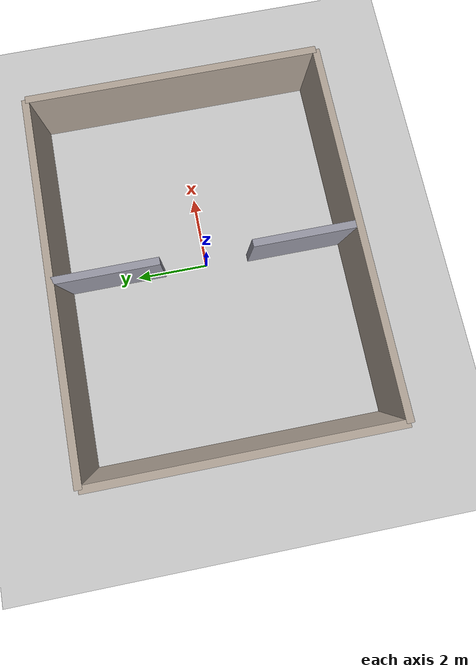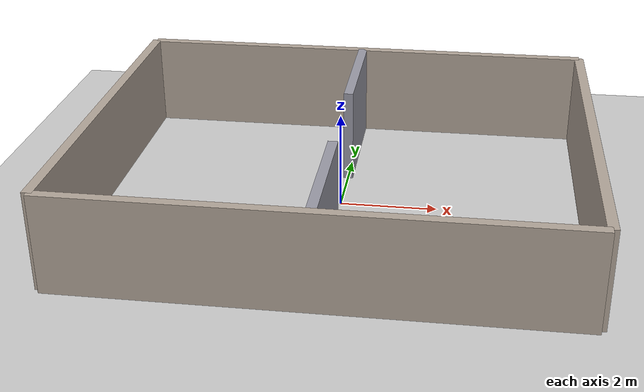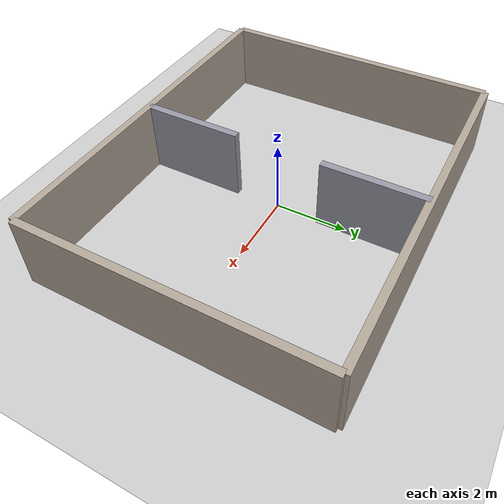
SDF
<?xml version="1.0" ?>
<sdf version="1.8">
  <world name="default">

    <physics name="1ms" type="ode">
      <max_step_size>0.005</max_step_size>
      <real_time_factor>1.0</real_time_factor>
    </physics>

    <plugin filename="gz-sim-physics-system" name="gz::sim::systems::Physics"/>
    <plugin filename="gz-sim-user-commands-system" name="gz::sim::systems::UserCommands"/>
    <plugin filename="gz-sim-scene-broadcaster-system" name="gz::sim::systems::SceneBroadcaster"/>
    <plugin filename="gz-sim-contact-system" name="gz::sim::systems::Contact"/>
    <plugin filename="gz-sim-imu-system" name="gz::sim::systems::Imu"/>
    <plugin filename="gz-sim-sensors-system" name="gz::sim::systems::Sensors">
      <render_engine>ogre2</render_engine>
    </plugin>
    <plugin filename="gz-sim-forcetorque-system" name="gz::sim::systems::ForceTorque"/>
    <plugin filename="gz-sim-apply-link-wrench-system" name="gz::sim::systems::ApplyLinkWrench"/>

    <scene>
      <ambient>0.6 0.6 0.6 1</ambient>
      <background>0.75 0.75 0.78 1</background>
      <shadows>false</shadows>
    </scene>

    <light type="directional" name="sun">
      <cast_shadows>false</cast_shadows>
      <pose>0 0 10 0 0 0</pose>
      <diffuse>0.8 0.8 0.8 1</diffuse>
      <specular>0.2 0.2 0.2 1</specular>
      <direction>-0.5 0.1 -0.9</direction>
    </light>

    <model name="ground_plane">
      <static>true</static>
      <link name="link">
        <collision name="collision">
          <geometry><plane><normal>0 0 1</normal><size>200 200</size></plane></geometry>
          <surface><friction><ode><mu>1.0</mu><mu2>1.0</mu2></ode></friction></surface>
        </collision>
        <visual name="visual">
          <geometry><plane><normal>0 0 1</normal><size>200 200</size></plane></geometry>
          <material><ambient>0.8 0.8 0.8 1</ambient><diffuse>0.8 0.8 0.8 1</diffuse></material>
        </visual>
      </link>
    </model>

    <model name="wall_north">
      <static>true</static>
      <pose>0 4 1 0 0 0</pose>
      <link name="link">
        <collision name="collision">
          <geometry><box><size>10 0.2 2</size></box></geometry>
        </collision>
        <visual name="visual">
          <geometry><box><size>10 0.2 2</size></box></geometry>
          <material><ambient>0.7 0.65 0.6 1</ambient><diffuse>0.7 0.65 0.6 1</diffuse></material>
        </visual>
      </link>
    </model>

    <model name="wall_south">
      <static>true</static>
      <pose>0 -4 1 0 0 0</pose>
      <link name="link">
        <collision name="collision">
          <geometry><box><size>10 0.2 2</size></box></geometry>
        </collision>
        <visual name="visual">
          <geometry><box><size>10 0.2 2</size></box></geometry>
          <material><ambient>0.7 0.65 0.6 1</ambient><diffuse>0.7 0.65 0.6 1</diffuse></material>
        </visual>
      </link>
    </model>

    <model name="wall_east">
      <static>true</static>
      <pose>5 0 1 0 0 1.5708</pose>
      <link name="link">
        <collision name="collision">
          <geometry><box><size>8 0.2 2</size></box></geometry>
        </collision>
        <visual name="visual">
          <geometry><box><size>8 0.2 2</size></box></geometry>
          <material><ambient>0.7 0.65 0.6 1</ambient><diffuse>0.7 0.65 0.6 1</diffuse></material>
        </visual>
      </link>
    </model>

    <model name="wall_west">
      <static>true</static>
      <pose>-5 0 1 0 0 1.5708</pose>
      <link name="link">
        <collision name="collision">
          <geometry><box><size>8 0.2 2</size></box></geometry>
        </collision>
        <visual name="visual">
          <geometry><box><size>8 0.2 2</size></box></geometry>
          <material><ambient>0.7 0.65 0.6 1</ambient><diffuse>0.7 0.65 0.6 1</diffuse></material>
        </visual>
      </link>
    </model>

    <model name="wall_divider_a">
      <static>true</static>
      <pose>0 -2.6 1 0 0 1.5708</pose>
      <link name="link">
        <collision name="collision">
          <geometry><box><size>2.8 0.2 2</size></box></geometry>
        </collision>
        <visual name="visual">
          <geometry><box><size>2.8 0.2 2</size></box></geometry>
          <material><ambient>0.6 0.6 0.65 1</ambient><diffuse>0.6 0.6 0.65 1</diffuse></material>
        </visual>
      </link>
    </model>

    <model name="wall_divider_b">
      <static>true</static>
      <pose>0 2.6 1 0 0 1.5708</pose>
      <link name="link">
        <collision name="collision">
          <geometry><box><size>2.8 0.2 2</size></box></geometry>
        </collision>
        <visual name="visual">
          <geometry><box><size>2.8 0.2 2</size></box></geometry>
          <material><ambient>0.6 0.6 0.65 1</ambient><diffuse>0.6 0.6 0.65 1</diffuse></material>
        </visual>
      </link>
    </model>

  </world>
</sdf>
